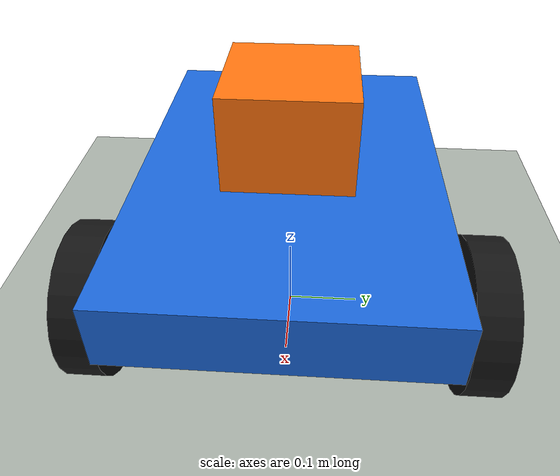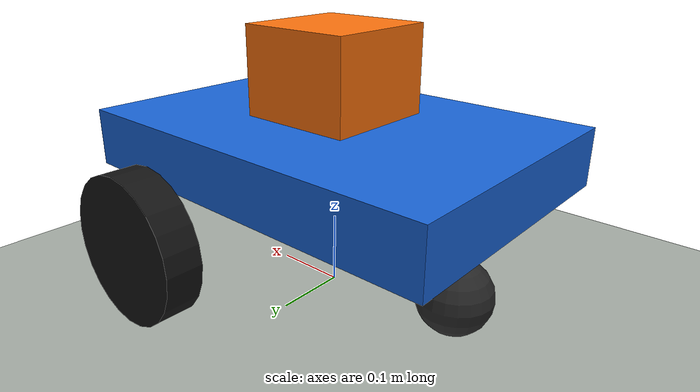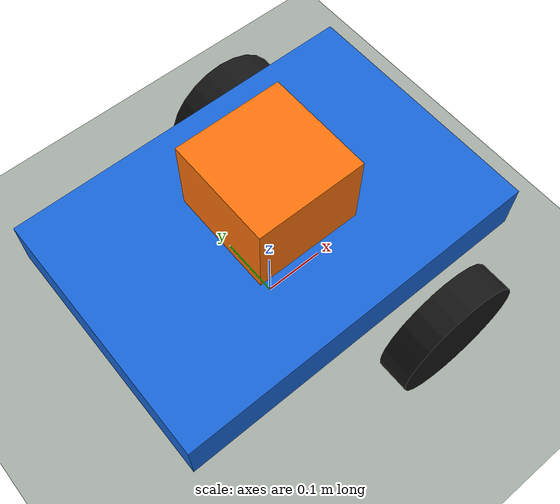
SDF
<?xml version='1.0' encoding='utf-8'?>
<sdf version="1.6">
  <world name="cargo_demo">
    <gravity>0 0 -9.81</gravity>
    <physics name="ode_physics" type="ode">
      <max_step_size>0.001</max_step_size>
      <real_time_update_rate>1000</real_time_update_rate>
    </physics>
    <scene>
      <ambient>0.6 0.6 0.6 1</ambient>
      <background>0.8 0.85 0.9 1</background>
    </scene>
    <light name="sun" type="directional">
      <pose>0 0 10 0 0 0</pose>
      <diffuse>0.8 0.8 0.8 1</diffuse>
      <direction>-0.5 0.2 -1</direction>
    </light>
    <gui fullscreen="0">
      <camera name="user_camera">
        <pose>2 -3 2 0 0.45 2.15</pose>
      </camera>
    </gui>
    <model name="floor">
      <static>true</static>
      <link name="ground">
        <pose>0 0 -0.05 0 0 0</pose>
        <inertial>
          <mass>1</mass>
          <inertia>
            <ixx>1</ixx>
            <iyy>1</iyy>
            <izz>1</izz>
            <ixy>0</ixy>
            <ixz>0</ixz>
            <iyz>0</iyz>
          </inertia>
        </inertial>
        <collision name="ground_collision">
          <geometry>
            <box>
              <size>30 30 0.1</size>
            </box>
          </geometry>
          <surface>
            <friction>
              <ode>
                <mu>1.0</mu>
                <mu2>1.0</mu2>
              </ode>
            </friction>
          <contact><ode><kp>1000000.0</kp><kd>100</kd><max_vel>0.01</max_vel><min_depth>0.0001</min_depth></ode></contact></surface>
        </collision>
        <visual name="ground_visual">
          <geometry>
            <box>
              <size>30 30 0.1</size>
            </box>
          </geometry>
          <material>
            <ambient>0.65 0.68 0.65 1</ambient>
            <diffuse>0.65 0.68 0.65 1</diffuse>
          </material>
        </visual>
      </link>
    </model>
    <model name="cargo_robot">
      <pose>0 0 0.005 0 0 0</pose>
      <link name="base_link">
        <pose>0 0 0.20 0 0 0</pose>
        <inertial>
          <mass>5</mass>
          <inertia>
            <ixx>0.0628333</ixx>
            <iyy>0.1287083</iyy>
            <izz>0.1862083</izz>
            <ixy>0</ixy>
            <ixz>0</ixz>
            <iyz>0</iyz>
          </inertia>
        </inertial>
        <collision name="base_link_collision">
          <geometry>
            <box>
              <size>0.55 0.38 0.08</size>
            </box>
          </geometry>
          <surface>
            <friction>
              <ode>
                <mu>0.3</mu>
                <mu2>0.3</mu2>
              </ode>
            </friction>
          <contact><ode><kp>1000000.0</kp><kd>100</kd><max_vel>0.01</max_vel><min_depth>0.0001</min_depth></ode></contact></surface>
        </collision>
        <visual name="base_link_visual">
          <geometry>
            <box>
              <size>0.55 0.38 0.08</size>
            </box>
          </geometry>
          <material>
            <ambient>0.1 0.4 0.85 1</ambient>
            <diffuse>0.1 0.4 0.85 1</diffuse>
          </material>
        </visual>
      </link>
      <link name="left_wheel">
        <pose>0.12 0.24 0.10 0 0 0</pose>
        <inertial>
          <mass>0.3</mass>
          <inertia>
            <ixx>0.0008125</ixx>
            <iyy>0.0015</iyy>
            <izz>0.0008125</izz>
            <ixy>0</ixy>
            <ixz>0</ixz>
            <iyz>0</iyz>
          </inertia>
        </inertial>
        <collision name="left_wheel_collision">
          <pose>0 0 0 1.57079632679 0 0</pose>
          <geometry>
            <cylinder>
              <radius>0.10</radius>
              <length>0.05</length>
            </cylinder>
          </geometry>
          <surface>
            <friction>
              <ode>
                <mu>1.0</mu>
                <mu2>1.0</mu2>
              </ode>
            </friction>
          <contact><ode><kp>1000000.0</kp><kd>100</kd><max_vel>0.01</max_vel><min_depth>0.0001</min_depth></ode></contact></surface>
        </collision>
        <visual name="left_wheel_visual">
          <pose>0 0 0 1.57079632679 0 0</pose>
          <geometry>
            <cylinder>
              <radius>0.10</radius>
              <length>0.05</length>
            </cylinder>
          </geometry>
          <material>
            <ambient>0.08 0.08 0.08 1</ambient>
            <diffuse>0.08 0.08 0.08 1</diffuse>
          </material>
        </visual>
      </link>
      <joint name="left_wheel_joint" type="revolute">
        <parent>base_link</parent>
        <child>left_wheel</child>
        <axis>
          <xyz>0 1 0</xyz>
          <dynamics>
            <damping>0.01</damping>
          </dynamics>
        </axis>
      </joint>
      <link name="right_wheel">
        <pose>0.12 -0.24 0.10 0 0 0</pose>
        <inertial>
          <mass>0.3</mass>
          <inertia>
            <ixx>0.0008125</ixx>
            <iyy>0.0015</iyy>
            <izz>0.0008125</izz>
            <ixy>0</ixy>
            <ixz>0</ixz>
            <iyz>0</iyz>
          </inertia>
        </inertial>
        <collision name="right_wheel_collision">
          <pose>0 0 0 1.57079632679 0 0</pose>
          <geometry>
            <cylinder>
              <radius>0.10</radius>
              <length>0.05</length>
            </cylinder>
          </geometry>
          <surface>
            <friction>
              <ode>
                <mu>1.0</mu>
                <mu2>1.0</mu2>
              </ode>
            </friction>
          <contact><ode><kp>1000000.0</kp><kd>100</kd><max_vel>0.01</max_vel><min_depth>0.0001</min_depth></ode></contact></surface>
        </collision>
        <visual name="right_wheel_visual">
          <pose>0 0 0 1.57079632679 0 0</pose>
          <geometry>
            <cylinder>
              <radius>0.10</radius>
              <length>0.05</length>
            </cylinder>
          </geometry>
          <material>
            <ambient>0.08 0.08 0.08 1</ambient>
            <diffuse>0.08 0.08 0.08 1</diffuse>
          </material>
        </visual>
      </link>
      <joint name="right_wheel_joint" type="revolute">
        <parent>base_link</parent>
        <child>right_wheel</child>
        <axis>
          <xyz>0 1 0</xyz>
          <dynamics>
            <damping>0.01</damping>
          </dynamics>
        </axis>
      </joint>
      <link name="rear_support">
        <pose>-0.20 0 0.05 0 0 0</pose>
        <inertial>
          <mass>0.1</mass>
          <inertia>
            <ixx>0.0001</ixx>
            <iyy>0.0001</iyy>
            <izz>0.0001</izz>
            <ixy>0</ixy>
            <ixz>0</ixz>
            <iyz>0</iyz>
          </inertia>
        </inertial>
        <collision name="rear_support_collision">
          <geometry>
            <sphere>
              <radius>0.05</radius>
            </sphere>
          </geometry>
          <surface>
            <friction>
              <ode>
                <mu>0.0</mu>
                <mu2>0.0</mu2>
              </ode>
            </friction>
          <contact><ode><kp>1000000.0</kp><kd>100</kd><max_vel>0.01</max_vel><min_depth>0.0001</min_depth></ode></contact></surface>
        </collision>
        <visual name="rear_support_visual">
          <geometry>
            <sphere>
              <radius>0.05</radius>
            </sphere>
          </geometry>
          <material>
            <ambient>0.15 0.15 0.15 1</ambient>
            <diffuse>0.15 0.15 0.15 1</diffuse>
          </material>
        </visual>
      </link>
      <joint name="rear_support_joint" type="fixed">
        <parent>base_link</parent>
        <child>rear_support</child>
      </joint>
      <plugin name="diff_drive" filename="libgazebo_ros_diff_drive.so">
        <ros>
          <namespace>/cargo_robot</namespace>
        </ros>
        <update_rate>100</update_rate>
        <left_joint>left_wheel_joint</left_joint>
        <right_joint>right_wheel_joint</right_joint>
        <wheel_separation>0.48</wheel_separation>
        <wheel_diameter>0.2</wheel_diameter>
        <max_wheel_torque>20</max_wheel_torque>
        <max_wheel_acceleration>1.0</max_wheel_acceleration>
        <publish_odom>true</publish_odom>
        <publish_odom_tf>true</publish_odom_tf>
        <publish_wheel_tf>false</publish_wheel_tf>
        <odometry_frame>odom</odometry_frame>
        <robot_base_frame>base_link</robot_base_frame>
      </plugin>
    <allow_auto_disable>false</allow_auto_disable></model>
    <model name="cargo_box">
      <pose>0 0 0.31 0 0 0</pose>
      <link name="box">
        <pose>0 0 0 0 0 0</pose>
        <inertial>
          <mass>0.5</mass>
          <inertia>
            <ixx>0.001666667</ixx>
            <iyy>0.001666667</iyy>
            <izz>0.002133333</izz>
            <ixy>0</ixy>
            <ixz>0</ixz>
            <iyz>0</iyz>
          </inertia>
        </inertial>
        <collision name="box_collision">
          <geometry>
            <box>
              <size>0.16 0.16 0.12</size>
            </box>
          </geometry>
          <surface>
            <friction>
              <ode>
                <mu>0.3</mu>
                <mu2>0.3</mu2>
              </ode>
            </friction>
          <contact><ode><kp>1000000.0</kp><kd>100</kd><max_vel>0.01</max_vel><min_depth>0.0001</min_depth></ode></contact></surface>
        </collision>
        <visual name="box_visual">
          <geometry>
            <box>
              <size>0.16 0.16 0.12</size>
            </box>
          </geometry>
          <material>
            <ambient>1 0.45 0.05 1</ambient>
            <diffuse>1 0.45 0.05 1</diffuse>
          </material>
        </visual>
      </link>
    <allow_auto_disable>false</allow_auto_disable></model>
  <plugin name="cargo_state" filename="libgazebo_ros_state.so"><ros><namespace>/gazebo</namespace></ros><update_rate>20</update_rate></plugin></world>
</sdf>
